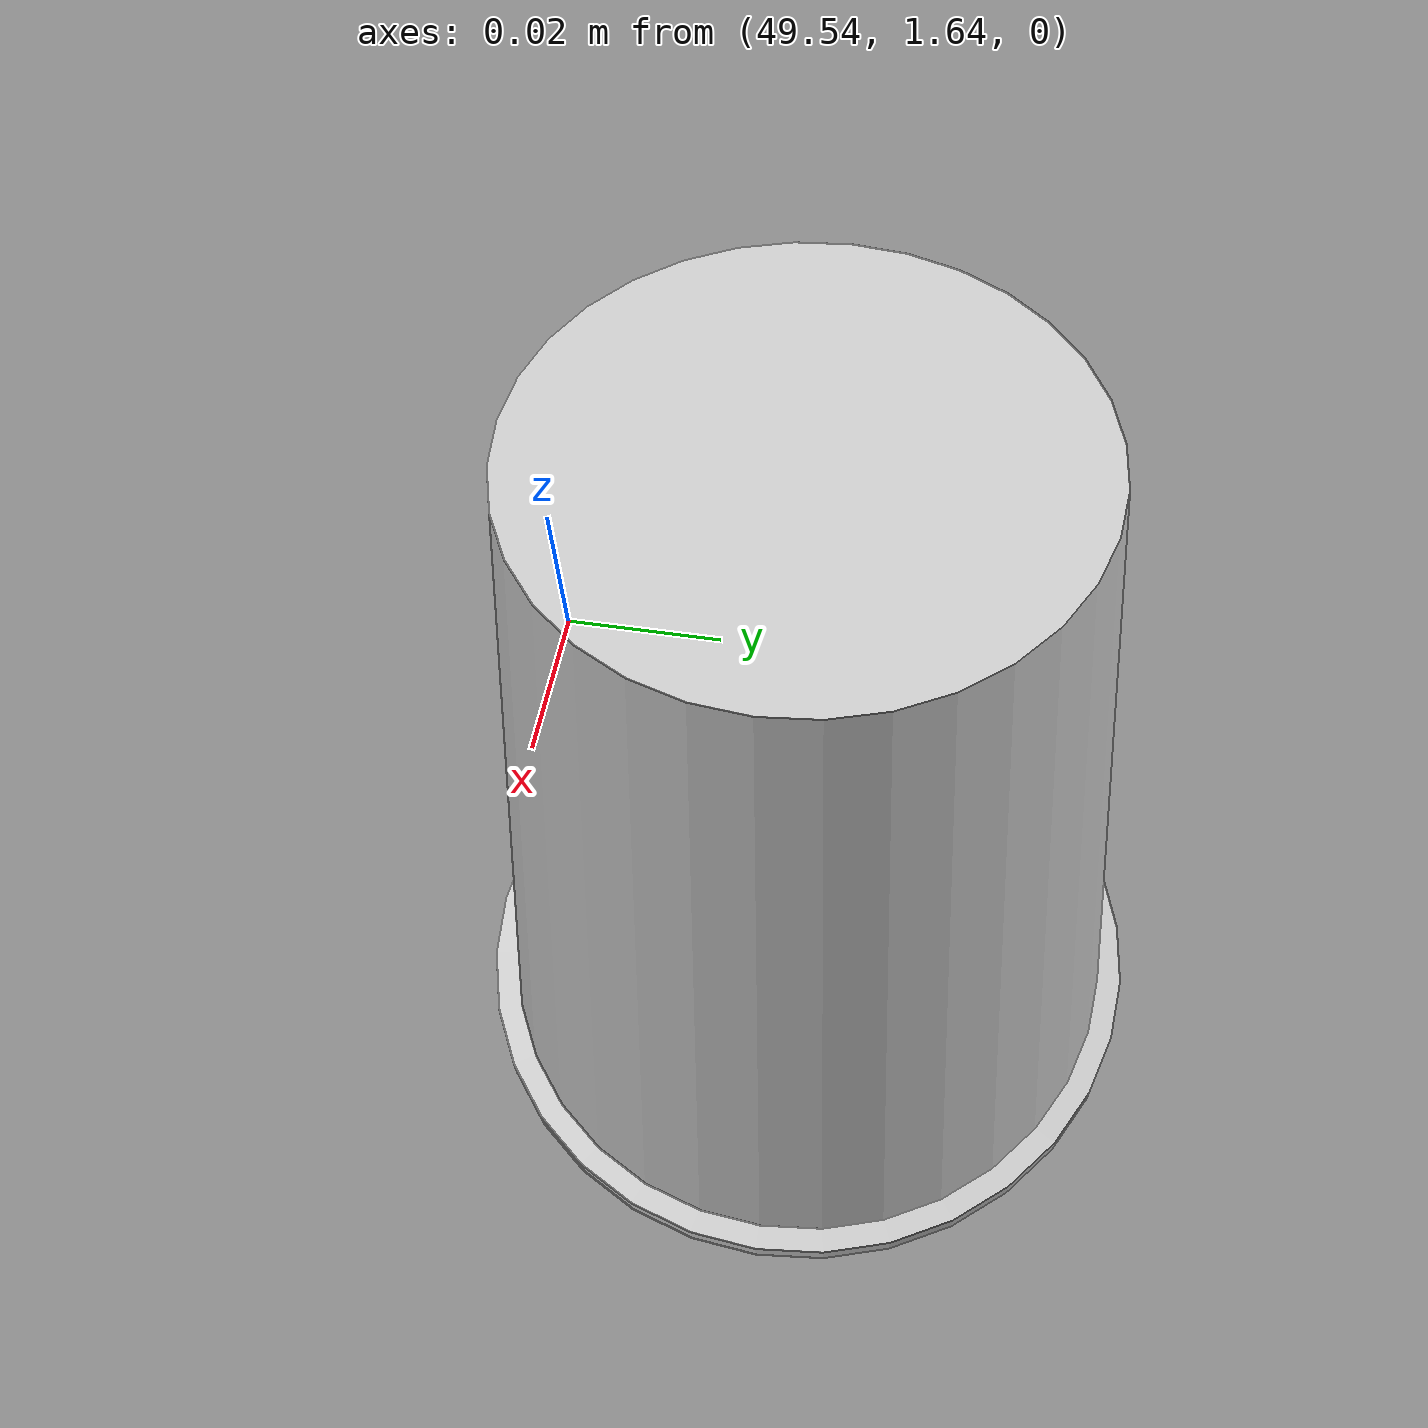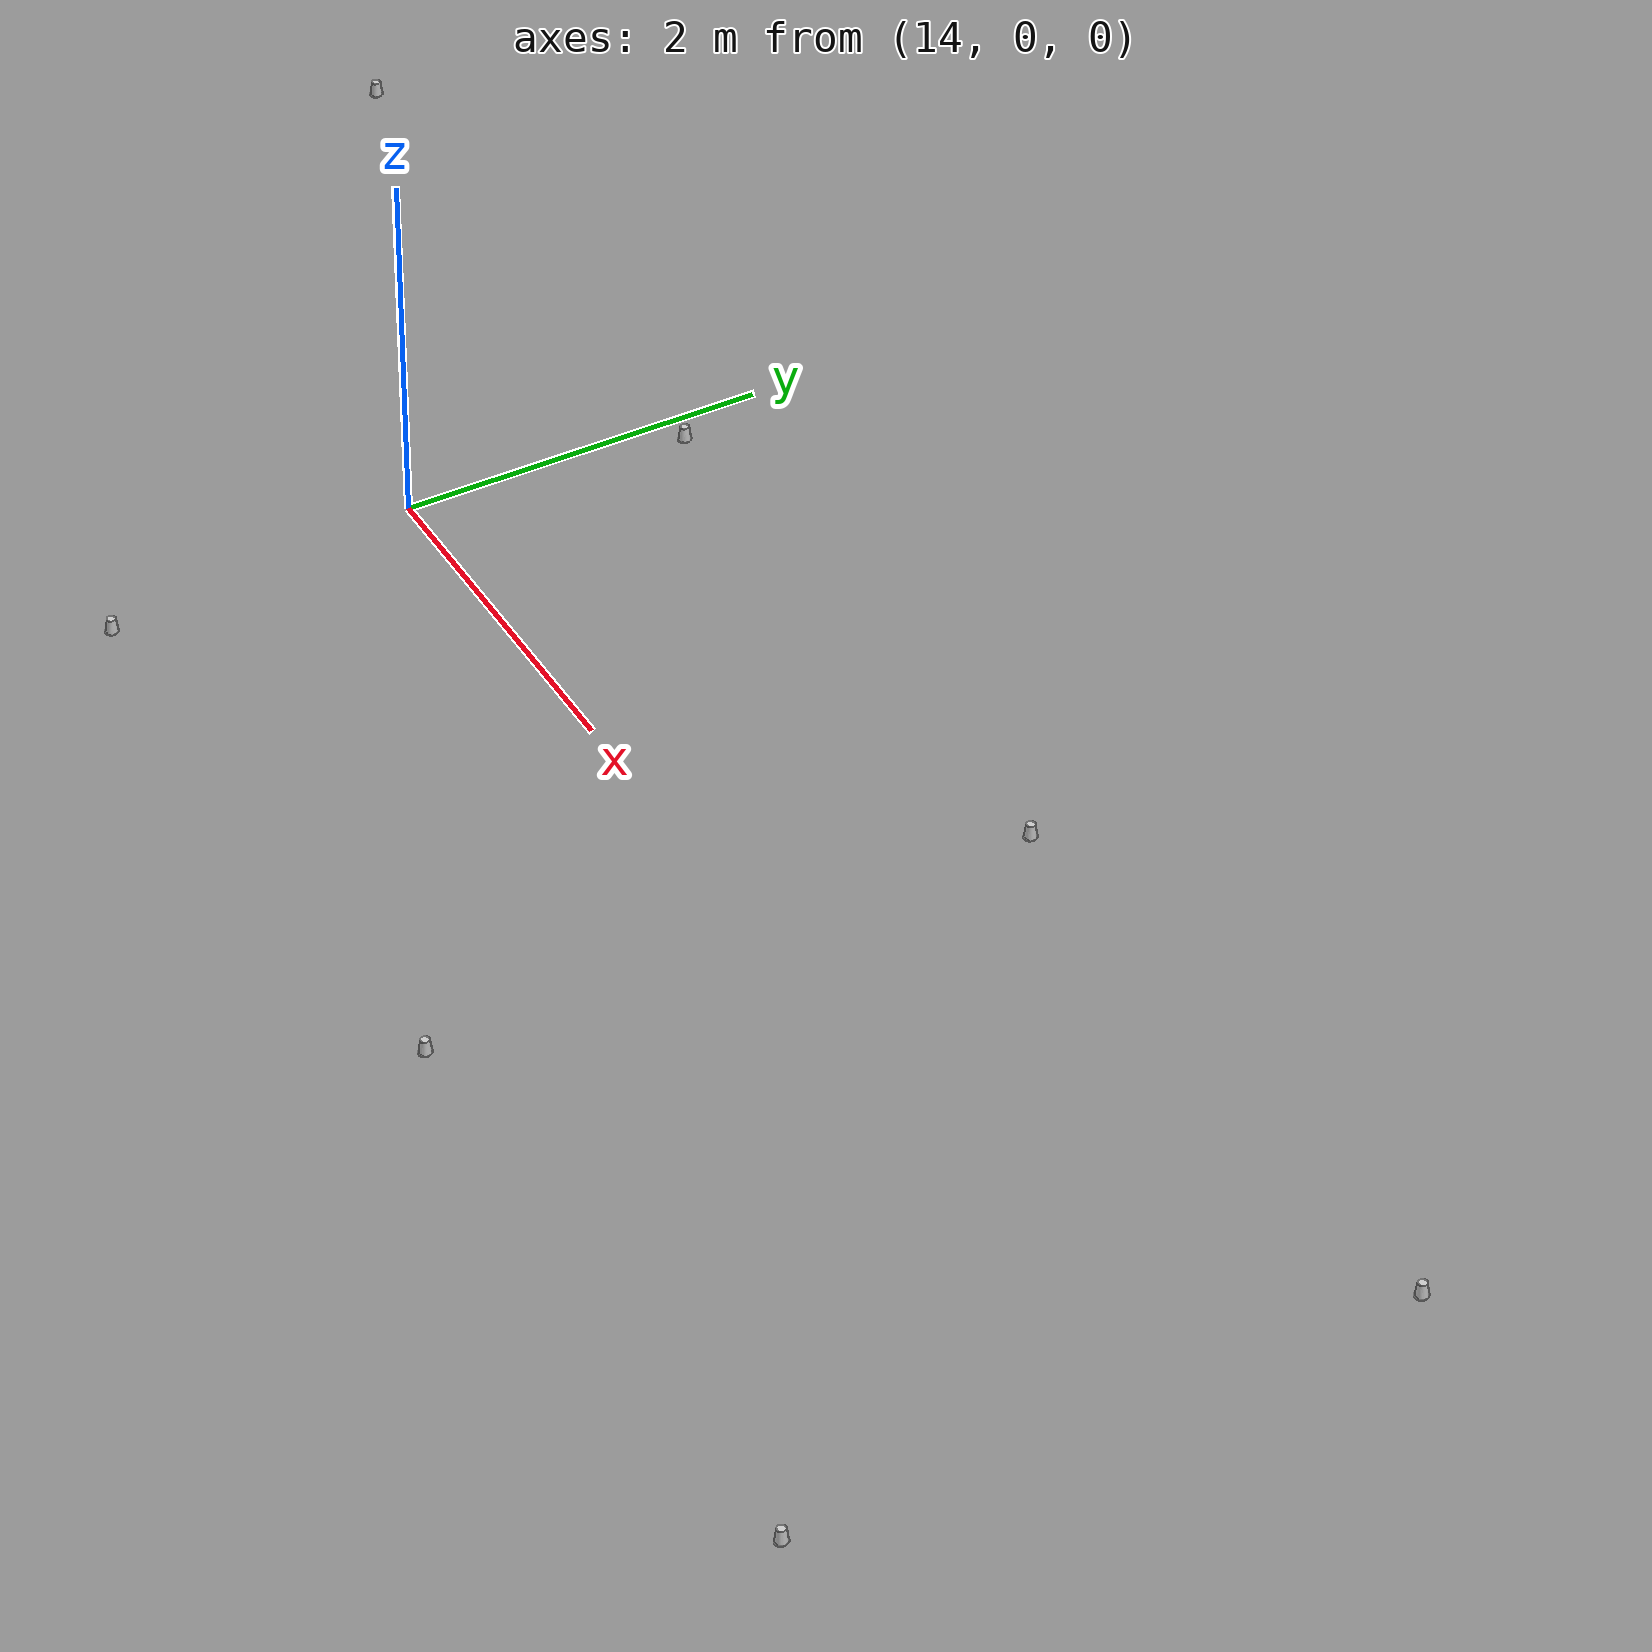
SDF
<?xml version='1.0' encoding='UTF-8'?>
<sdf version="1.4">
  <model name="some track">
    <include>
      <uri>model://cone_yellow</uri>
      <pose>3.498471916024802 -1.7137785058536883 0 0 0 0</pose>
      <name>cone_right</name>
    </include>
    <include>
      <uri>model://cone_yellow</uri>
      <pose>7.063972850152759 -1.7478504344668193 0 0 0 0</pose>
      <name>cone_right</name>
    </include>
    <include>
      <uri>model://cone_yellow</uri>
      <pose>10.619895542627223 -1.7474883648477666 0 0 0 0</pose>
      <name>cone_right</name>
    </include>
    <include>
      <uri>model://cone_yellow</uri>
      <pose>14.164566272058138 -1.7377493442993126 0 0 0 0</pose>
      <name>cone_right</name>
    </include>
    <include>
      <uri>model://cone_yellow</uri>
      <pose>17.685887640544937 -1.7684698260112455 0 0 0 0</pose>
      <name>cone_right</name>
    </include>
    <include>
      <uri>model://cone_yellow</uri>
      <pose>21.212430911849026 -1.8284298968402906 0 0 0 0</pose>
      <name>cone_right</name>
    </include>
    <include>
      <uri>model://cone_yellow</uri>
      <pose>24.783175344094545 -1.8224188637113312 0 0 0 0</pose>
      <name>cone_right</name>
    </include>
    <include>
      <uri>model://cone_yellow</uri>
      <pose>28.378590697615454 -1.6900285700670241 0 0 0 0</pose>
      <name>cone_right</name>
    </include>
    <include>
      <uri>model://cone_yellow</uri>
      <pose>31.876850102204404 -1.6488909833277887 0 0 0 0</pose>
      <name>cone_right</name>
    </include>
    <include>
      <uri>model://cone_yellow</uri>
      <pose>35.392674228099054 -1.6625450232321584 0 0 0 0</pose>
      <name>cone_right</name>
    </include>
    <include>
      <uri>model://cone_yellow</uri>
      <pose>38.93850658347372 -1.662905081405872 0 0 0 0</pose>
      <name>cone_right</name>
    </include>
    <include>
      <uri>model://cone_yellow</uri>
      <pose>42.456045481564296 -1.704689697722146 0 0 0 0</pose>
      <name>cone_right</name>
    </include>
    <include>
      <uri>model://cone_yellow</uri>
      <pose>46.10438367254968 -1.5393134256567496 0 0 0 0</pose>
      <name>cone_right</name>
    </include>
    <include>
      <uri>model://cone_yellow</uri>
      <pose>49.55281151930183 -1.572265123442713 0 0 0 0</pose>
      <name>cone_right</name>
    </include>
    <include>
      <uri>model://cone_yellow</uri>
      <pose>52.35540075779157 -2.673426857924894 0 0 0 0</pose>
      <name>cone_right</name>
    </include>
    <include>
      <uri>model://cone_yellow</uri>
      <pose>54.1824285755489 -4.8151691428845185 0 0 0 0</pose>
      <name>cone_right</name>
    </include>
    <include>
      <uri>model://cone_yellow</uri>
      <pose>55.20650822833874 -7.6505241138575 0 0 0 0</pose>
      <name>cone_right</name>
    </include>
    <include>
      <uri>model://cone_yellow</uri>
      <pose>55.510750631727646 -10.761982305294541 0 0 0 0</pose>
      <name>cone_right</name>
    </include>
    <include>
      <uri>model://cone_yellow</uri>
      <pose>55.13075715177497 -13.92498010860741 0 0 0 0</pose>
      <name>cone_right</name>
    </include>
    <include>
      <uri>model://cone_yellow</uri>
      <pose>54.11232942024084 -16.97159388130333 0 0 0 0</pose>
      <name>cone_right</name>
    </include>
    <include>
      <uri>model://cone_yellow</uri>
      <pose>52.52474360642152 -19.781365195067092 0 0 0 0</pose>
      <name>cone_right</name>
    </include>
    <include>
      <uri>model://cone_yellow</uri>
      <pose>50.63918523211102 -22.646276027951586 0 0 0 0</pose>
      <name>cone_right</name>
    </include>
    <include>
      <uri>model://cone_yellow</uri>
      <pose>48.742995306733 -25.670055923857877 0 0 0 0</pose>
      <name>cone_right</name>
    </include>
    <include>
      <uri>model://cone_yellow</uri>
      <pose>46.96319571499411 -28.797021421632582 0 0 0 0</pose>
      <name>cone_right</name>
    </include>
    <include>
      <uri>model://cone_yellow</uri>
      <pose>39.61747716930928 -31.40746252265141 0 0 0 0</pose>
      <name>cone_right</name>
    </include>
    <include>
      <uri>model://cone_yellow</uri>
      <pose>36.83527521807139 -30.025761229157702 0 0 0 0</pose>
      <name>cone_right</name>
    </include>
    <include>
      <uri>model://cone_yellow</uri>
      <pose>33.93867308633385 -28.277582149707627 0 0 0 0</pose>
      <name>cone_right</name>
    </include>
    <include>
      <uri>model://cone_yellow</uri>
      <pose>31.181164040825607 -26.283503913560054 0 0 0 0</pose>
      <name>cone_right</name>
    </include>
    <include>
      <uri>model://cone_yellow</uri>
      <pose>28.29329480600281 -24.222266877711274 0 0 0 0</pose>
      <name>cone_right</name>
    </include>
    <include>
      <uri>model://cone_yellow</uri>
      <pose>20.215070368384513 -23.456816310501775 0 0 0 0</pose>
      <name>cone_right</name>
    </include>
    <include>
      <uri>model://cone_yellow</uri>
      <pose>12.357388888509774 -19.680197094219757 0 0 0 0</pose>
      <name>cone_right</name>
    </include>
    <include>
      <uri>model://cone_yellow</uri>
      <pose>9.92481663553482 -17.238356463586538 0 0 0 0</pose>
      <name>cone_right</name>
    </include>
    <include>
      <uri>model://cone_yellow</uri>
      <pose>6.963104139575613 -14.846582624088539 0 0 0 0</pose>
      <name>cone_right</name>
    </include>
    <include>
      <uri>model://cone_yellow</uri>
      <pose>-1.3258503831867032 -16.031827498778828 0 0 0 0</pose>
      <name>cone_right</name>
    </include>
    <include>
      <uri>model://cone_yellow</uri>
      <pose>-2.917104889128491 -27.620404432852776 0 0 0 0</pose>
      <name>cone_right</name>
    </include>
    <include>
      <uri>model://cone_yellow</uri>
      <pose>-0.14817108340545126 -30.51493617080791 0 0 0 0</pose>
      <name>cone_right</name>
    </include>
    <include>
      <uri>model://cone_yellow</uri>
      <pose>1.9170613066635758 -33.162561965966226 0 0 0 0</pose>
      <name>cone_right</name>
    </include>
    <include>
      <uri>model://cone_yellow</uri>
      <pose>4.094061364017202 -35.949213394100234 0 0 0 0</pose>
      <name>cone_right</name>
    </include>
    <include>
      <uri>model://cone_yellow</uri>
      <pose>5.991714722250387 -38.793590075872316 0 0 0 0</pose>
      <name>cone_right</name>
    </include>
    <include>
      <uri>model://cone_yellow</uri>
      <pose>7.7124438909461395 -41.77114068126264 0 0 0 0</pose>
      <name>cone_right</name>
    </include>
    <include>
      <uri>model://cone_yellow</uri>
      <pose>9.258525896034264 -44.84932060255551 0 0 0 0</pose>
      <name>cone_right</name>
    </include>
    <include>
      <uri>model://cone_yellow</uri>
      <pose>10.473050068051279 -48.02034856391382 0 0 0 0</pose>
      <name>cone_right</name>
    </include>
    <include>
      <uri>model://cone_yellow</uri>
      <pose>11.165100935302865 -51.26680683225606 0 0 0 0</pose>
      <name>cone_right</name>
    </include>
    <include>
      <uri>model://cone_yellow</uri>
      <pose>10.997917853213673 -54.38106637919632 0 0 0 0</pose>
      <name>cone_right</name>
    </include>
    <include>
      <uri>model://cone_yellow</uri>
      <pose>9.9276214525753 -57.30036847891656 0 0 0 0</pose>
      <name>cone_right</name>
    </include>
    <include>
      <uri>model://cone_yellow</uri>
      <pose>8.104157109675928 -59.97175531934642 0 0 0 0</pose>
      <name>cone_right</name>
    </include>
    <include>
      <uri>model://cone_yellow</uri>
      <pose>5.690778004951474 -62.16698002109388 0 0 0 0</pose>
      <name>cone_right</name>
    </include>
    <include>
      <uri>model://cone_yellow</uri>
      <pose>2.885068985161083 -63.652478285329025 0 0 0 0</pose>
      <name>cone_right</name>
    </include>
    <include>
      <uri>model://cone_yellow</uri>
      <pose>-0.10830886178535504 -64.24668147892697 0 0 0 0</pose>
      <name>cone_right</name>
    </include>
    <include>
      <uri>model://cone_yellow</uri>
      <pose>-3.25378363844605 -64.07767602183355 0 0 0 0</pose>
      <name>cone_right</name>
    </include>
    <include>
      <uri>model://cone_yellow</uri>
      <pose>-6.5479938832048195 -63.425416852228786 0 0 0 0</pose>
      <name>cone_right</name>
    </include>
    <include>
      <uri>model://cone_yellow</uri>
      <pose>-9.771048846571231 -62.421496506655046 0 0 0 0</pose>
      <name>cone_right</name>
    </include>
    <include>
      <uri>model://cone_yellow</uri>
      <pose>-12.664676062469612 -60.91214674591434 0 0 0 0</pose>
      <name>cone_right</name>
    </include>
    <include>
      <uri>model://cone_yellow</uri>
      <pose>-15.103696417638508 -58.80195803486964 0 0 0 0</pose>
      <name>cone_right</name>
    </include>
    <include>
      <uri>model://cone_yellow</uri>
      <pose>-16.828164981705363 -56.222295462237 0 0 0 0</pose>
      <name>cone_right</name>
    </include>
    <include>
      <uri>model://cone_yellow</uri>
      <pose>-17.96426453539697 -53.25833875228686 0 0 0 0</pose>
      <name>cone_right</name>
    </include>
    <include>
      <uri>model://cone_yellow</uri>
      <pose>-19.300327006510454 -49.880868524103256 0 0 0 0</pose>
      <name>cone_right</name>
    </include>
    <include>
      <uri>model://cone_yellow</uri>
      <pose>-24.886296368499035 -44.35244918857865 0 0 0 0</pose>
      <name>cone_right</name>
    </include>
    <include>
      <uri>model://cone_yellow</uri>
      <pose>-28.801364608233346 -43.12241784646377 0 0 0 0</pose>
      <name>cone_right</name>
    </include>
    <include>
      <uri>model://cone_yellow</uri>
      <pose>-32.30349412467241 -42.18888189821375 0 0 0 0</pose>
      <name>cone_right</name>
    </include>
    <include>
      <uri>model://cone_yellow</uri>
      <pose>-36.46428938524606 -38.08739825566172 0 0 0 0</pose>
      <name>cone_right</name>
    </include>
    <include>
      <uri>model://cone_yellow</uri>
      <pose>-38.289139947825184 -35.1205370060739 0 0 0 0</pose>
      <name>cone_right</name>
    </include>
    <include>
      <uri>model://cone_yellow</uri>
      <pose>-40.02352312651667 -32.107557931359075 0 0 0 0</pose>
      <name>cone_right</name>
    </include>
    <include>
      <uri>model://cone_yellow</uri>
      <pose>-41.39418523822103 -29.047286584539734 0 0 0 0</pose>
      <name>cone_right</name>
    </include>
    <include>
      <uri>model://cone_yellow</uri>
      <pose>-42.82112451399845 -25.81432363921241 0 0 0 0</pose>
      <name>cone_right</name>
    </include>
    <include>
      <uri>model://cone_yellow</uri>
      <pose>-45.13554670061612 -22.649719526548896 0 0 0 0</pose>
      <name>cone_right</name>
    </include>
    <include>
      <uri>model://cone_yellow</uri>
      <pose>-48.513469008568066 -20.279142487996513 0 0 0 0</pose>
      <name>cone_right</name>
    </include>
    <include>
      <uri>model://cone_yellow</uri>
      <pose>-51.77795374058609 -18.55437883421176 0 0 0 0</pose>
      <name>cone_right</name>
    </include>
    <include>
      <uri>model://cone_yellow</uri>
      <pose>-53.887917439659546 -13.066713912904838 0 0 0 0</pose>
      <name>cone_right</name>
    </include>
    <include>
      <uri>model://cone_yellow</uri>
      <pose>-53.60756868106799 -6.952974285403382 0 0 0 0</pose>
      <name>cone_right</name>
    </include>
    <include>
      <uri>model://cone_yellow</uri>
      <pose>-52.189838618600014 -4.010697793117669 0 0 0 0</pose>
      <name>cone_right</name>
    </include>
    <include>
      <uri>model://cone_yellow</uri>
      <pose>-50.278945695701005 -1.345912114951521 0 0 0 0</pose>
      <name>cone_right</name>
    </include>
    <include>
      <uri>model://cone_yellow</uri>
      <pose>-47.8559896343906 0.6235656674758117 0 0 0 0</pose>
      <name>cone_right</name>
    </include>
    <include>
      <uri>model://cone_yellow</uri>
      <pose>-44.96944429524495 1.7720113403026845 0 0 0 0</pose>
      <name>cone_right</name>
    </include>
    <include>
      <uri>model://cone_yellow</uri>
      <pose>-41.933670258646885 1.997200134357341 0 0 0 0</pose>
      <name>cone_right</name>
    </include>
    <include>
      <uri>model://cone_yellow</uri>
      <pose>-38.83930549066332 1.4554583361363445 0 0 0 0</pose>
      <name>cone_right</name>
    </include>
    <include>
      <uri>model://cone_yellow</uri>
      <pose>-35.57897139227439 0.4979778433731825 0 0 0 0</pose>
      <name>cone_right</name>
    </include>
    <include>
      <uri>model://cone_yellow</uri>
      <pose>-32.199902326778016 -0.5358773267570143 0 0 0 0</pose>
      <name>cone_right</name>
    </include>
    <include>
      <uri>model://cone_yellow</uri>
      <pose>-28.683230696936697 -1.3827830407518633 0 0 0 0</pose>
      <name>cone_right</name>
    </include>
    <include>
      <uri>model://cone_yellow</uri>
      <pose>-25.005533278946142 -1.8533270087799971 0 0 0 0</pose>
      <name>cone_right</name>
    </include>
    <include>
      <uri>model://cone_yellow</uri>
      <pose>-21.311673001697184 -1.9974812516637557 0 0 0 0</pose>
      <name>cone_right</name>
    </include>
    <include>
      <uri>model://cone_yellow</uri>
      <pose>-17.67145708865778 -1.9522382941544814 0 0 0 0</pose>
      <name>cone_right</name>
    </include>
    <include>
      <uri>model://cone_yellow</uri>
      <pose>-14.103368353425413 -1.8436851813263684 0 0 0 0</pose>
      <name>cone_right</name>
    </include>
    <include>
      <uri>model://cone_yellow</uri>
      <pose>-10.586820532787533 -1.7750339962100572 0 0 0 0</pose>
      <name>cone_right</name>
    </include>
    <include>
      <uri>model://cone_yellow</uri>
      <pose>-7.08298589646016 -1.784597611741054 0 0 0 0</pose>
      <name>cone_right</name>
    </include>
    <include>
      <uri>model://cone_yellow</uri>
      <pose>-3.532267251058657 -1.773798394573733 0 0 0 0</pose>
      <name>cone_right</name>
    </include>
    <include>
      <uri>model://cone_yellow</uri>
      <pose>44.72498587437012 -30.91787194771252 0 0 0 0</pose>
      <name>cone_right</name>
    </include>
    <include>
      <uri>model://cone_yellow</uri>
      <pose>42.34080827900016 -31.726067742753195 0 0 0 0</pose>
      <name>cone_right</name>
    </include>
    <include>
      <uri>model://cone_yellow</uri>
      <pose>14.902561037369626 -21.583210514992864 0 0 0 0</pose>
      <name>cone_right</name>
    </include>
    <include>
      <uri>model://cone_yellow</uri>
      <pose>17.24632884298755 -23.442060843586383 0 0 0 0</pose>
      <name>cone_right</name>
    </include>
    <include>
      <uri>model://cone_yellow</uri>
      <pose>25.786726879152113 -22.856473203760757 0 0 0 0</pose>
      <name>cone_right</name>
    </include>
    <include>
      <uri>model://cone_yellow</uri>
      <pose>23.074809124559817 -22.856473203760757 0 0 0 0</pose>
      <name>cone_right</name>
    </include>
    <include>
      <uri>model://cone_yellow</uri>
      <pose>4.051736922024961 -13.807496173695718 0 0 0 0</pose>
      <name>cone_right</name>
    </include>
    <include>
      <uri>model://cone_yellow</uri>
      <pose>1.3755022957825638 -14.60045458147124 0 0 0 0</pose>
      <name>cone_right</name>
    </include>
    <include>
      <uri>model://cone_yellow</uri>
      <pose>-3.3822481508705877 -18.23484728377573 0 0 0 0</pose>
      <name>cone_right</name>
    </include>
    <include>
      <uri>model://cone_yellow</uri>
      <pose>-4.802965298135078 -21.505800715849773 0 0 0 0</pose>
      <name>cone_right</name>
    </include>
    <include>
      <uri>model://cone_yellow</uri>
      <pose>-4.307366293275372 -24.809794081581124 0 0 0 0</pose>
      <name>cone_right</name>
    </include>
    <include>
      <uri>model://cone_yellow</uri>
      <pose>-20.3268898973502 -47.32832169531655 0 0 0 0</pose>
      <name>cone_right</name>
    </include>
    <include>
      <uri>model://cone_yellow</uri>
      <pose>-22.155974803729258 -45.46406207919943 0 0 0 0</pose>
      <name>cone_right</name>
    </include>
    <include>
      <uri>model://cone_yellow</uri>
      <pose>-34.4319485023118 -40.469253296395074 0 0 0 0</pose>
      <name>cone_right</name>
    </include>
    <include>
      <uri>model://cone_yellow</uri>
      <pose>-52.7931469855785 -16.022830028444183 0 0 0 0</pose>
      <name>cone_right</name>
    </include>
    <include>
      <uri>model://cone_yellow</uri>
      <pose>-53.953912406934464 -10.14865350218836 0 0 0 0</pose>
      <name>cone_right</name>
    </include>
    <include>
      <uri>model://cone_blue</uri>
      <pose>3.5804386911011186 1.5351877063103578 0 0 0 0</pose>
      <name>cone_left</name>
    </include>
    <include>
      <uri>model://cone_blue</uri>
      <pose>7.0948453476791995 1.5020029297477075 0 0 0 0</pose>
      <name>cone_left</name>
    </include>
    <include>
      <uri>model://cone_blue</uri>
      <pose>10.619495866096766 1.5025116105766443 0 0 0 0</pose>
      <name>cone_left</name>
    </include>
    <include>
      <uri>model://cone_blue</uri>
      <pose>14.155631758673461 1.5122383748268042 0 0 0 0</pose>
      <name>cone_left</name>
    </include>
    <include>
      <uri>model://cone_blue</uri>
      <pose>17.714141818280748 1.4814073565051145 0 0 0 0</pose>
      <name>cone_left</name>
    </include>
    <include>
      <uri>model://cone_blue</uri>
      <pose>21.267629607859327 1.4211013161131658 0 0 0 0</pose>
      <name>cone_left</name>
    </include>
    <include>
      <uri>model://cone_blue</uri>
      <pose>24.77744432949671 1.4275760832803837 0 0 0 0</pose>
      <name>cone_left</name>
    </include>
    <include>
      <uri>model://cone_blue</uri>
      <pose>28.258085255555333 1.5577365751418926 0 0 0 0</pose>
      <name>cone_left</name>
    </include>
    <include>
      <uri>model://cone_blue</uri>
      <pose>31.838156013507604 1.6008786650472961 0 0 0 0</pose>
      <name>cone_left</name>
    </include>
    <include>
      <uri>model://cone_blue</uri>
      <pose>35.4051099270435 1.587431184894874 0 0 0 0</pose>
      <name>cone_left</name>
    </include>
    <include>
      <uri>model://cone_blue</uri>
      <pose>38.93882625153834 1.5870949028729477 0 0 0 0</pose>
      <name>cone_left</name>
    </include>
    <include>
      <uri>model://cone_blue</uri>
      <pose>42.494545701850875 1.545082253205778 0 0 0 0</pose>
      <name>cone_left</name>
    </include>
    <include>
      <uri>model://cone_blue</uri>
      <pose>45.95479496113504 1.7072421671858107 0 0 0 0</pose>
      <name>cone_left</name>
    </include>
    <include>
      <uri>model://cone_blue</uri>
      <pose>49.5815594281747 1.6776077291063582 0 0 0 0</pose>
      <name>cone_left</name>
    </include>
    <include>
      <uri>model://cone_blue</uri>
      <pose>53.452382028542786 0.38584300457842247 0 0 0 0</pose>
      <name>cone_left</name>
    </include>
    <include>
      <uri>model://cone_blue</uri>
      <pose>56.52389315503051 -2.5612739316927966 0 0 0 0</pose>
      <name>cone_left</name>
    </include>
    <include>
      <uri>model://cone_blue</uri>
      <pose>58.218264336121216 -6.4291211716492445 0 0 0 0</pose>
      <name>cone_left</name>
    </include>
    <include>
      <uri>model://cone_blue</uri>
      <pose>58.73884173834928 -10.385249233544311 0 0 0 0</pose>
      <name>cone_left</name>
    </include>
    <include>
      <uri>model://cone_blue</uri>
      <pose>58.36219738756566 -14.271814366593944 0 0 0 0</pose>
      <name>cone_left</name>
    </include>
    <include>
      <uri>model://cone_blue</uri>
      <pose>57.20542132892855 -17.969232315010938 0 0 0 0</pose>
      <name>cone_left</name>
    </include>
    <include>
      <uri>model://cone_blue</uri>
      <pose>55.36912449399018 -21.353623878119624 0 0 0 0</pose>
      <name>cone_left</name>
    </include>
    <include>
      <uri>model://cone_blue</uri>
      <pose>53.356391315463256 -24.42933270136205 0 0 0 0</pose>
      <name>cone_left</name>
    </include>
    <include>
      <uri>model://cone_blue</uri>
      <pose>51.496565931936196 -27.396424601753214 0 0 0 0</pose>
      <name>cone_left</name>
    </include>
    <include>
      <uri>model://cone_blue</uri>
      <pose>49.7883904208444 -30.40350045169662 0 0 0 0</pose>
      <name>cone_left</name>
    </include>
    <include>
      <uri>model://cone_blue</uri>
      <pose>39.064910055713185 -34.610144146692754 0 0 0 0</pose>
      <name>cone_left</name>
    </include>
    <include>
      <uri>model://cone_blue</uri>
      <pose>35.44553866297697 -32.96364010811686 0 0 0 0</pose>
      <name>cone_left</name>
    </include>
    <include>
      <uri>model://cone_blue</uri>
      <pose>32.26587480861146 -31.064021799520447 0 0 0 0</pose>
      <name>cone_left</name>
    </include>
    <include>
      <uri>model://cone_blue</uri>
      <pose>29.281133986765475 -28.920241631587437 0 0 0 0</pose>
      <name>cone_left</name>
    </include>
    <include>
      <uri>model://cone_blue</uri>
      <pose>26.405209192799223 -26.867570776550426 0 0 0 0</pose>
      <name>cone_left</name>
    </include>
    <include>
      <uri>model://cone_blue</uri>
      <pose>23.505661692539384 -26.20758724038231 0 0 0 0</pose>
      <name>cone_left</name>
    </include>
    <include>
      <uri>model://cone_blue</uri>
      <pose>20.613040521659496 -26.682358087800946 0 0 0 0</pose>
      <name>cone_left</name>
    </include>
    <include>
      <uri>model://cone_blue</uri>
      <pose>10.138800058213384 -22.055142062441988 0 0 0 0</pose>
      <name>cone_left</name>
    </include>
    <include>
      <uri>model://cone_blue</uri>
      <pose>7.623040425555287 -19.53276843164551 0 0 0 0</pose>
      <name>cone_left</name>
    </include>
    <include>
      <uri>model://cone_blue</uri>
      <pose>-0.055325631228207994 -26.080041008510424 0 0 0 0</pose>
      <name>cone_left</name>
    </include>
    <include>
      <uri>model://cone_blue</uri>
      <pose>2.162996302900864 -28.229984242982287 0 0 0 0</pose>
      <name>cone_left</name>
    </include>
    <include>
      <uri>model://cone_blue</uri>
      <pose>4.473351331743069 -31.155603743262255 0 0 0 0</pose>
      <name>cone_left</name>
    </include>
    <include>
      <uri>model://cone_blue</uri>
      <pose>6.655169743006223 -33.94840758866278 0 0 0 0</pose>
      <name>cone_left</name>
    </include>
    <include>
      <uri>model://cone_blue</uri>
      <pose>8.692942549249224 -36.98641874291931 0 0 0 0</pose>
      <name>cone_left</name>
    </include>
    <include>
      <uri>model://cone_blue</uri>
      <pose>10.52474963413168 -40.142203479635256 0 0 0 0</pose>
      <name>cone_left</name>
    </include>
    <include>
      <uri>model://cone_blue</uri>
      <pose>12.161583619507017 -43.38824023030173 0 0 0 0</pose>
      <name>cone_left</name>
    </include>
    <include>
      <uri>model://cone_blue</uri>
      <pose>13.505368348132464 -46.85092740441417 0 0 0 0</pose>
      <name>cone_left</name>
    </include>
    <include>
      <uri>model://cone_blue</uri>
      <pose>14.339788258567287 -50.571206085056794 0 0 0 0</pose>
      <name>cone_left</name>
    </include>
    <include>
      <uri>model://cone_blue</uri>
      <pose>14.245684641873302 -54.501527520148635 0 0 0 0</pose>
      <name>cone_left</name>
    </include>
    <include>
      <uri>model://cone_blue</uri>
      <pose>13.003039571379231 -58.35122688732965 0 0 0 0</pose>
      <name>cone_left</name>
    </include>
    <include>
      <uri>model://cone_blue</uri>
      <pose>10.817530520828349 -61.76063897449314 0 0 0 0</pose>
      <name>cone_left</name>
    </include>
    <include>
      <uri>model://cone_blue</uri>
      <pose>7.91063278438706 -64.54074175265352 0 0 0 0</pose>
      <name>cone_left</name>
    </include>
    <include>
      <uri>model://cone_blue</uri>
      <pose>0.5929383077826389 -67.42012635904902 0 0 0 0</pose>
      <name>cone_left</name>
    </include>
    <include>
      <uri>model://cone_blue</uri>
      <pose>-3.374188831128639 -67.32544488515728 0 0 0 0</pose>
      <name>cone_left</name>
    </include>
    <include>
      <uri>model://cone_blue</uri>
      <pose>-7.161264402598597 -66.61703074962341 0 0 0 0</pose>
      <name>cone_left</name>
    </include>
    <include>
      <uri>model://cone_blue</uri>
      <pose>-10.728652573066247 -65.52721624658697 0 0 0 0</pose>
      <name>cone_left</name>
    </include>
    <include>
      <uri>model://cone_blue</uri>
      <pose>-14.145977881191323 -63.80493863643322 0 0 0 0</pose>
      <name>cone_left</name>
    </include>
    <include>
      <uri>model://cone_blue</uri>
      <pose>-17.198169749950665 -61.28704987627776 0 0 0 0</pose>
      <name>cone_left</name>
    </include>
    <include>
      <uri>model://cone_blue</uri>
      <pose>-19.497046075826574 -58.0769042364647 0 0 0 0</pose>
      <name>cone_left</name>
    </include>
    <include>
      <uri>model://cone_blue</uri>
      <pose>-20.98328883659986 -54.46166425635731 0 0 0 0</pose>
      <name>cone_left</name>
    </include>
    <include>
      <uri>model://cone_blue</uri>
      <pose>-22.322457777503754 -51.076370762919844 0 0 0 0</pose>
      <name>cone_left</name>
    </include>
    <include>
      <uri>model://cone_blue</uri>
      <pose>-26.6167651065409 -47.103444998582695 0 0 0 0</pose>
      <name>cone_left</name>
    </include>
    <include>
      <uri>model://cone_blue</uri>
      <pose>-29.730391458702794 -46.236805284003744 0 0 0 0</pose>
      <name>cone_left</name>
    </include>
    <include>
      <uri>model://cone_blue</uri>
      <pose>-33.139975633656164 -45.32939120167525 0 0 0 0</pose>
      <name>cone_left</name>
    </include>
    <include>
      <uri>model://cone_blue</uri>
      <pose>-39.04445189008072 -40.06357169153352 0 0 0 0</pose>
      <name>cone_left</name>
    </include>
    <include>
      <uri>model://cone_blue</uri>
      <pose>-41.053444381693986 -36.829665730568735 0 0 0 0</pose>
      <name>cone_left</name>
    </include>
    <include>
      <uri>model://cone_blue</uri>
      <pose>-42.8398232993083 -33.72957930505729 0 0 0 0</pose>
      <name>cone_left</name>
    </include>
    <include>
      <uri>model://cone_blue</uri>
      <pose>-44.3571036000519 -30.382807000379742 0 0 0 0</pose>
      <name>cone_left</name>
    </include>
    <include>
      <uri>model://cone_blue</uri>
      <pose>-45.79437427571644 -27.1266825285578 0 0 0 0</pose>
      <name>cone_left</name>
    </include>
    <include>
      <uri>model://cone_blue</uri>
      <pose>-47.73841431571377 -24.59589017124475 0 0 0 0</pose>
      <name>cone_left</name>
    </include>
    <include>
      <uri>model://cone_blue</uri>
      <pose>-50.3202168211231 -22.98065360991099 0 0 0 0</pose>
      <name>cone_left</name>
    </include>
    <include>
      <uri>model://cone_blue</uri>
      <pose>-53.28910032802718 -21.431692857961195 0 0 0 0</pose>
      <name>cone_left</name>
    </include>
    <include>
      <uri>model://cone_blue</uri>
      <pose>-57.00390363574327 -13.990364293631053 0 0 0 0</pose>
      <name>cone_left</name>
    </include>
    <include>
      <uri>model://cone_blue</uri>
      <pose>-56.78770067109812 -6.2827052901581855 0 0 0 0</pose>
      <name>cone_left</name>
    </include>
    <include>
      <uri>model://cone_blue</uri>
      <pose>-55.13565515125425 -2.6378667926150534 0 0 0 0</pose>
      <name>cone_left</name>
    </include>
    <include>
      <uri>model://cone_blue</uri>
      <pose>-52.934845497588476 0.5272393050714489 0 0 0 0</pose>
      <name>cone_left</name>
    </include>
    <include>
      <uri>model://cone_blue</uri>
      <pose>-49.94871739411504 3.110127656182051 0 0 0 0</pose>
      <name>cone_left</name>
    </include>
    <include>
      <uri>model://cone_blue</uri>
      <pose>-46.240150002702286 4.763299859492257 0 0 0 0</pose>
      <name>cone_left</name>
    </include>
    <include>
      <uri>model://cone_blue</uri>
      <pose>-42.25298558200177 5.2314755902006995 0 0 0 0</pose>
      <name>cone_left</name>
    </include>
    <include>
      <uri>model://cone_blue</uri>
      <pose>-38.33246733029752 4.665694321106454 0 0 0 0</pose>
      <name>cone_left</name>
    </include>
    <include>
      <uri>model://cone_blue</uri>
      <pose>-34.67489814346535 3.619700374410794 0 0 0 0</pose>
      <name>cone_left</name>
    </include>
    <include>
      <uri>model://cone_blue</uri>
      <pose>-31.249206679605535 2.5719640119292597 0 0 0 0</pose>
      <name>cone_left</name>
    </include>
    <include>
      <uri>model://cone_blue</uri>
      <pose>-27.92497490387852 1.7775251961601193 0 0 0 0</pose>
      <name>cone_left</name>
    </include>
    <include>
      <uri>model://cone_blue</uri>
      <pose>-24.601757479963933 1.3714931573930376 0 0 0 0</pose>
      <name>cone_left</name>
    </include>
    <include>
      <uri>model://cone_blue</uri>
      <pose>-21.190364516464303 1.2502539979233322 0 0 0 0</pose>
      <name>cone_left</name>
    </include>
    <include>
      <uri>model://cone_blue</uri>
      <pose>-17.713683739369664 1.297487372724133 0 0 0 0</pose>
      <name>cone_left</name>
    </include>
    <include>
      <uri>model://cone_blue</uri>
      <pose>-14.202424604523799 1.404804907794781 0 0 0 0</pose>
      <name>cone_left</name>
    </include>
    <include>
      <uri>model://cone_blue</uri>
      <pose>-10.650345770720348 1.4743451051176995 0 0 0 0</pose>
      <name>cone_left</name>
    </include>
    <include>
      <uri>model://cone_blue</uri>
      <pose>-7.074485317885566 1.465391271342071 0 0 0 0</pose>
      <name>cone_left</name>
    </include>
    <include>
      <uri>model://cone_blue</uri>
      <pose>-3.5421756721461386 1.4761865012667927 0 0 0 0</pose>
      <name>cone_left</name>
    </include>
    <include>
      <uri>model://cone_blue</uri>
      <pose>47.917359264780735 -33.26163975333045 0 0 0 0</pose>
      <name>cone_left</name>
    </include>
    <include>
      <uri>model://cone_blue</uri>
      <pose>42.179169119992025 -35.2821292409321 0 0 0 0</pose>
      <name>cone_left</name>
    </include>
    <include>
      <uri>model://cone_blue</uri>
      <pose>45.41195230015468 -34.393113866387374 0 0 0 0</pose>
      <name>cone_left</name>
    </include>
    <include>
      <uri>model://cone_blue</uri>
      <pose>18.256573586788377 -26.95771255201327 0 0 0 0</pose>
      <name>cone_left</name>
    </include>
    <include>
      <uri>model://cone_blue</uri>
      <pose>12.96289112927203 -24.573534956643307 0 0 0 0</pose>
      <name>cone_left</name>
    </include>
    <include>
      <uri>model://cone_blue</uri>
      <pose>15.589527463154191 -26.513204864740906 0 0 0 0</pose>
      <name>cone_left</name>
    </include>
    <include>
      <uri>model://cone_blue</uri>
      <pose>5.604613803918699 -18.201807350118415 0 0 0 0</pose>
      <name>cone_left</name>
    </include>
    <include>
      <uri>model://cone_blue</uri>
      <pose>3.3578983152213766 -17.970527814517226 0 0 0 0</pose>
      <name>cone_left</name>
    </include>
    <include>
      <uri>model://cone_blue</uri>
      <pose>0.8799032909228579 -18.730446288635434 0 0 0 0</pose>
      <name>cone_left</name>
    </include>
    <include>
      <uri>model://cone_blue</uri>
      <pose>-1.0033729275440137 -20.778922175388878 0 0 0 0</pose>
      <name>cone_left</name>
    </include>
    <include>
      <uri>model://cone_blue</uri>
      <pose>-1.1313472990967384 -23.354646526245176 0 0 0 0</pose>
      <name>cone_left</name>
    </include>
    <include>
      <uri>model://cone_blue</uri>
      <pose>5.737570018551388 -65.97091785648774 0 0 0 0</pose>
      <name>cone_left</name>
    </include>
    <include>
      <uri>model://cone_blue</uri>
      <pose>3.4160391758395043 -66.92063501941533 0 0 0 0</pose>
      <name>cone_left</name>
    </include>
    <include>
      <uri>model://cone_blue</uri>
      <pose>-23.98505971010833 -49.01670776274337 0 0 0 0</pose>
      <name>cone_left</name>
    </include>
    <include>
      <uri>model://cone_blue</uri>
      <pose>-35.69823805288192 -43.77567601177261 0 0 0 0</pose>
      <name>cone_left</name>
    </include>
    <include>
      <uri>model://cone_blue</uri>
      <pose>-37.31627470083262 -42.016940524869675 0 0 0 0</pose>
      <name>cone_left</name>
    </include>
    <include>
      <uri>model://cone_blue</uri>
      <pose>-55.04432840881428 -18.87198151722695 0 0 0 0</pose>
      <name>cone_left</name>
    </include>
    <include>
      <uri>model://cone_blue</uri>
      <pose>-56.06439499121798 -16.761498932943418 0 0 0 0</pose>
      <name>cone_left</name>
    </include>
    <include>
      <uri>model://cone_blue</uri>
      <pose>-57.22516041257393 -8.812014532142122 0 0 0 0</pose>
      <name>cone_left</name>
    </include>
    <include>
      <uri>model://cone_blue</uri>
      <pose>-57.3306845417881 -11.414943052758474 0 0 0 0</pose>
      <name>cone_left</name>
    </include>
    <include>
      <uri>model://cone_orange_big</uri>
      <pose>-1.3 2.125 0 0 0 0</pose>
      <name>cone_orange_big</name>
    </include>
    <include>
      <uri>model://cone_orange_big</uri>
      <pose>-1.3 -2.125 0 0 0 0</pose>
      <name>cone_orange_big</name>
    </include>
    <include>
      <uri>model://cone_orange_big</uri>
      <pose>1.3 2.125 0 0 0 0</pose>
      <name>cone_orange_big</name>
    </include>
    <include>
      <uri>model://cone_orange_big</uri>
      <pose>1.3 -2.125 0 0 0 0</pose>
      <name>cone_orange_big</name>
    </include>
  </model>
</sdf>

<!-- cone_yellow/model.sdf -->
<sdf version='1.4'>
  <model name="cone_yellow">
    <link name="link">
    <collision name="collision"><geometry><box><size> 0.05 0.05 0.01</size>
             </box></geometry></collision>
      <visual name="visual">
        <geometry>
          <mesh>
            <uri>model://cup.dae</uri>
            <scale>1 1 1</scale>
          </mesh>
        </geometry>
        <material>
            <script>
              <uri>model://cone_yellow/materials/scripts</uri>
              <uri>model://cone_yellow/materials/textures</uri>
              <name>cone_yellow/Image</name>
            </script>
        </material>
      </visual>
    </link>
  </model>
</sdf>

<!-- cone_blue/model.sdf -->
<sdf version='1.4'>
  <model name="cone_blue">
    <link name="link">
    <collision name="collision"><geometry><box><size> 0.05 0.05 0.01</size>
             </box></geometry></collision>
      <visual name="visual">
        <geometry>
          <mesh>
            <uri>model://cup.dae</uri>
            <scale>1 1 1</scale>
          </mesh>
        </geometry>
        <material>
            <script>
              <uri>model://cone_blue/materials/scripts</uri>
              <uri>model://cone_blue/materials/textures</uri>
              <name>cone_blue/Image</name>
            </script>
        </material>
      </visual>
    </link>
  </model>
</sdf>

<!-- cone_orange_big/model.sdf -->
<sdf version='1.4'>
  <model name="cone_orange_big">
    <link name="link">
    <collision name="collision"><geometry><box><size> 0.05 0.05 0.01</size>
             </box></geometry></collision>
      <visual name="visual">
        <geometry>
          <mesh>
            <uri>model://cup.dae</uri>
            <scale>1 1 1</scale>
          </mesh>
        </geometry>
        <material>
            <script>
              <uri>model://cone_orange_big/materials/scripts</uri>
              <uri>model://cone_orange_big/materials/textures</uri>
              <name>cone_orange_big/Image</name>
            </script>
        </material>
      </visual>
    </link>
  </model>
</sdf>
